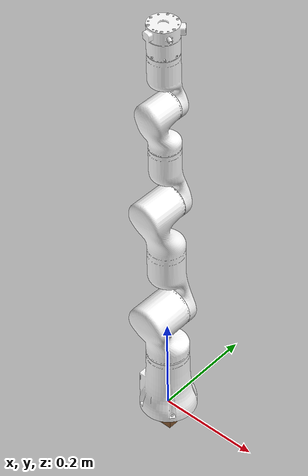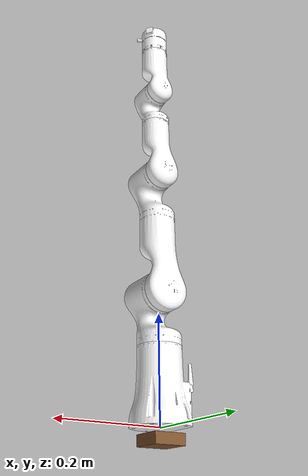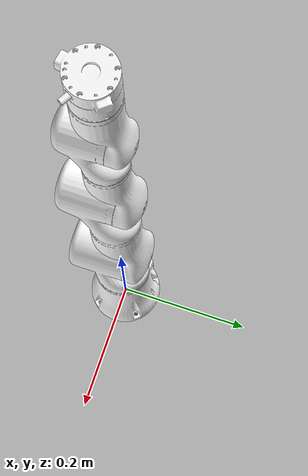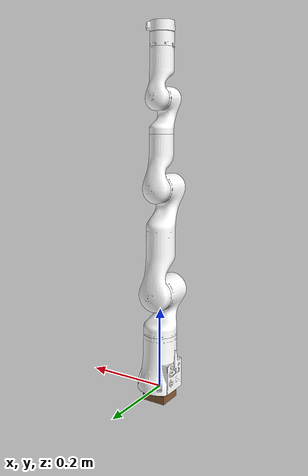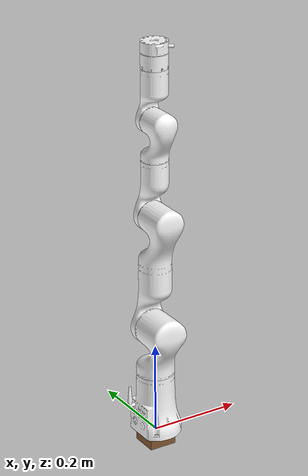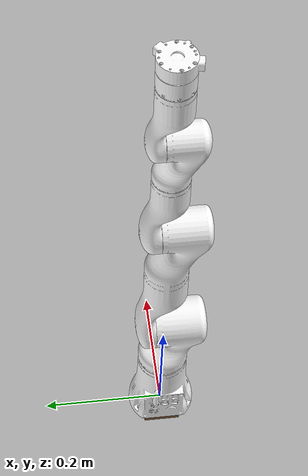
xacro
<?xml version="1.0" encoding="utf-8"?>
     <robot  name="rm_65_6f_description" xmlns:xacro="http://www.ros.org/wiki/xacro">
      <xacro:include filename="$(find rm_description)/urdf/RM65/rm_65.transmission.xacro"/>
      <xacro:include filename="$(find rm_description)/urdf/RM65/rm_65.gazebo.xacro"/>
        <!-- Inertial matrix -->
        <xacro:macro name="inertial_matrix" params="mass">
          <inertial>
            <mass value="${mass}" />
            <inertia ixx="1.0" ixy="0.0" ixz="0.0" iyy="0.5" iyz="0.0" izz="1.0" />
        </inertial>
        </xacro:macro>
        <xacro:macro name="Box_inertial_matrix" params="m l w h">
          <inertial>
            <mass value="${m}" />
              <inertia ixx="${m*(h*h + l*l)/12}" ixy = "0" ixz = "0"
                iyy="${m*(w*w + l*l)/12}" iyz= "0"
                izz="${m*(w*w + h*h)/12}" />
          </inertial>
        </xacro:macro>
        <link name="dummy">
        </link>
        <joint name="dummy_joint" type="fixed">
        <origin xyz="0 0 0" rpy="0 0 3.14" />
          <parent link="dummy" />
          <child link="base_link" />
        </joint>

        <!-- ///////////////////////////////////////   bottom_joint   ////////////////////////////////////////// -->
        <joint name="bottom_joint" type="fixed">
          <origin xyz="0 0 0" rpy="0 0 0" />
          <parent link="base_link"/>
          <child link="bottom_link"/>
        </joint>
        <link name="bottom_link">
          <visual>
            <origin xyz=" 0 0 -0.02"  rpy="0 0 0"/>
            <geometry>
              <box size="0.06 0.06 0.02" />
            </geometry>
            <material name="Brown" />
          </visual>
          <collision>
            <origin xyz=" 0 0 0"  rpy="0 0 0"/>
            <geometry>
              <box size="0.06 0.06 0.02" />
            </geometry>
          </collision>
          <xacro:Box_inertial_matrix m="500" l="1" w="1" h="0.02"/>
        </link>

  <link
    name="base_link">
    <inertial>
      <origin
        xyz="-0.00043295 -3.5277E-05 0.059942"
        rpy="0 0 0" />
      <mass
        value="0.84105" />
      <inertia
        ixx="0.0017261"
        ixy="2.5273E-06"
        ixz="-3.6769E-05"
        iyy="0.0017099"
        iyz="1.6802E-06"
        izz="0.00090402" />
    </inertial>
    <visual>
      <origin
        xyz="0 0 0"
        rpy="0 0 0" />
      <geometry>
        <mesh
          filename="package://rm_description/meshes/RM65_6F/base_link.STL" />
      </geometry>
      <material
        name="">
        <color
          rgba="1 1 1 1" />
      </material>
    </visual>
    <collision>
      <origin
        xyz="0 0 0"
        rpy="0 0 0" />
      <geometry>
        <mesh
          filename="package://rm_description/meshes/RM65_6F/base_link.STL" />
      </geometry>
    </collision>
  </link>
  <link
    name="Link1">
    <inertial>
      <origin
        xyz="2.1376E-07 0.021108 -0.025186"
        rpy="0 0 0" />
      <mass
        value="0.59356" />
      <inertia
        ixx="0.0012661"
        ixy="-1.2951E-08"
        ixz="-9.8019E-09"
        iyy="0.0011817"
        iyz="-0.00021122"
        izz="0.00056135" />
    </inertial>
    <visual>
      <origin
        xyz="0 0 0"
        rpy="0 0 0" />
      <geometry>
        <mesh
          filename="package://rm_description/meshes/RM65_6F/Link1.STL" />
      </geometry>
      <material
        name="">
        <color
          rgba="1 1 1 1" />
      </material>
    </visual>
    <collision>
      <origin
        xyz="0 0 0"
        rpy="0 0 0" />
      <geometry>
        <mesh
          filename="package://rm_description/meshes/RM65_6F/Link1.STL" />
      </geometry>
    </collision>
  </link>
  <joint
    name="joint1"
    type="revolute">
    <origin
      xyz="0 0 0.2405"
      rpy="0 0 0" />
    <parent
      link="base_link" />
    <child
      link="Link1" />
    <axis
      xyz="0 0 1" />
    <limit
      lower="-3.107"
      upper="3.107"
      effort="100"
      velocity="1" />
  </joint>
  <link
    name="Link2">
    <inertial>
      <origin
        xyz="0.15226 6.0139E-07 -0.0062025"
        rpy="0 0 0" />
      <mass
        value="0.86418" />
      <inertia
        ixx="0.00063254"
        ixy="-5.979E-09"
        ixz="0.00042163"
        iyy="0.0020527"
        iyz="1.8401E-09"
        izz="0.0019528" />
    </inertial>
    <visual>
      <origin
        xyz="0 0 0"
        rpy="0 0 0" />
      <geometry>
        <mesh
          filename="package://rm_description/meshes/RM65_6F/Link2.STL" />
      </geometry>
      <material
        name="">
        <color
          rgba="1 1 1 1" />
      </material>
    </visual>
    <collision>
      <origin
        xyz="0 0 0"
        rpy="0 0 0" />
      <geometry>
        <mesh
          filename="package://rm_description/meshes/RM65_6F/Link2.STL" />
      </geometry>
    </collision>
  </link>
  <joint
    name="joint2"
    type="revolute">
    <origin
      xyz="0 0 0"
      rpy="1.5708 -1.5708 0" />
    <parent
      link="Link1" />
    <child
      link="Link2" />
    <axis
      xyz="0 0 1" />
    <limit
      lower="-2.269"
      upper="2.269"
      effort="100"
      velocity="1" />
  </joint>
  <link
    name="Link3">
    <inertial>
      <origin
        xyz="5.0421E-06 -0.059593 0.010569"
        rpy="0 0 0" />
      <mass
        value="0.28963" />
      <inertia
        ixx="0.00063737"
        ixy="-7.0522E-08"
        ixz="-3.8666E-08"
        iyy="0.00015648"
        iyz="-0.00014461"
        izz="0.00061418" />
    </inertial>
    <visual>
      <origin
        xyz="0 0 0"
        rpy="0 0 0" />
      <geometry>
        <mesh
          filename="package://rm_description/meshes/RM65_6F/Link3.STL" />
      </geometry>
      <material
        name="">
        <color
          rgba="1 1 1 1" />
      </material>
    </visual>
    <collision>
      <origin
        xyz="0 0 0"
        rpy="0 0 0" />
      <geometry>
        <mesh
          filename="package://rm_description/meshes/RM65_6F/Link3.STL" />
      </geometry>
    </collision>
  </link>
  <joint
    name="joint3"
    type="revolute">
    <origin
      xyz="0.256 0 0"
      rpy="0 0 1.5708" />
    <parent
      link="Link2" />
    <child
      link="Link3" />
    <axis
      xyz="0 0 1" />
    <limit
      lower="-2.356"
      upper="2.356"
      effort="100"
      velocity="1" />
  </joint>
  <link
    name="Link4">
    <inertial>
      <origin
        xyz="1.1466E-06 -0.018041 -0.021541"
        rpy="0 0 0" />
      <mass
        value="0.23941" />
      <inertia
        ixx="0.00028594"
        ixy="2.6611E-09"
        ixz="-1.8435E-09"
        iyy="0.00026273"
        iyz="4.4238E-05"
        izz="0.00011989" />
    </inertial>
    <visual>
      <origin
        xyz="0 0 0"
        rpy="0 0 0" />
      <geometry>
        <mesh
          filename="package://rm_description/meshes/RM65_6F/Link4.STL" />
      </geometry>
      <material
        name="">
        <color
          rgba="1 1 1 1" />
      </material>
    </visual>
    <collision>
      <origin
        xyz="0 0 0"
        rpy="0 0 0" />
      <geometry>
        <mesh
          filename="package://rm_description/meshes/RM65_6F/Link4.STL" />
      </geometry>
    </collision>
  </link>
  <joint
    name="joint4"
    type="revolute">
    <origin
      xyz="0 -0.21 0"
      rpy="1.5708 0 0" />
    <parent
      link="Link3" />
    <child
      link="Link4" />
    <axis
      xyz="0 0 1" />
    <limit
      lower="-3.107"
      upper="3.107"
      effort="100"
      velocity="1" />
  </joint>
  <link
    name="Link5">
    <inertial>
      <origin
        xyz="3.4542E-06 -0.059382 0.0073678"
        rpy="0 0 0" />
      <mass
        value="0.21879" />
      <inertia
        ixx="0.00035053"
        ixy="-3.1667E-08"
        ixz="-1.7442E-08"
        iyy="0.00010492"
        iyz="-7.824E-05"
        izz="0.00033447" />
    </inertial>
    <visual>
      <origin
        xyz="0 0 0"
        rpy="0 0 0" />
      <geometry>
        <mesh
          filename="package://rm_description/meshes/RM65_6F/Link5.STL" />
      </geometry>
      <material
        name="">
        <color
          rgba="1 1 1 1" />
      </material>
    </visual>
    <collision>
      <origin
        xyz="0 0 0"
        rpy="0 0 0" />
      <geometry>
        <mesh
          filename="package://rm_description/meshes/RM65_6F/Link5.STL" />
      </geometry>
    </collision>
  </link>
  <joint
    name="joint5"
    type="revolute">
    <origin
      xyz="0 0 0"
      rpy="-1.5708 0 0" />
    <parent
      link="Link4" />
    <child
      link="Link5" />
    <axis
      xyz="0 0 1" />
    <limit
      lower="-2.234"
      upper="2.234"
      effort="100"
      velocity="1" />
  </joint>
  <link
    name="Link6">
    <inertial>
      <origin
        xyz="0.00032231 -0.00017819 -0.028676"
        rpy="0 0 0" />
      <mass
        value="0.14433" />
      <inertia
        ixx="3.6119E-05"
        ixy="-1.3242E-06"
        ixz="-3.2733E-08"
        iyy="3.4626E-05"
        iyz="7.6661E-09"
        izz="6.1463E-05" />
    </inertial>
    <visual>
      <origin
        xyz="0 0 0"
        rpy="0 0 0" />
      <geometry>
        <mesh
          filename="package://rm_description/meshes/RM65_6F/Link6.STL" />
      </geometry>
      <material
        name="">
        <color
          rgba="1 1 1 1" />
      </material>
    </visual>
    <collision>
      <origin
        xyz="0 0 0"
        rpy="0 0 0" />
      <geometry>
        <mesh
          filename="package://rm_description/meshes/RM65_6F/Link6.STL" />
      </geometry>
    </collision>
  </link>
  <joint
    name="joint6"
    type="revolute">
    <origin
      xyz="0 -0.1725 0"
      rpy="1.5708 0 0" />
    <parent
      link="Link5" />
    <child
      link="Link6" />
    <axis
      xyz="0 0 1" />
    <limit
      lower="-6.283"
      upper="6.283"
      effort="100"
      velocity="1" />
  </joint>

    <!-- Transmissions for ROS Control -->
    <xacro:macro name="transmission_block" params="joint_name">
      <transmission name="tran1">
        <type>transmission_interface/SimpleTransmission</type>
        <joint name="${joint_name}">
          <hardwareInterface>hardware_interface/PositionJointInterface</hardwareInterface>
        </joint>
        <actuator name="motor1">
          <hardwareInterface>hardware_interface/PositionJointInterface</hardwareInterface>
          <mechanicalReduction>1</mechanicalReduction>
        </actuator>
      </transmission>
    </xacro:macro>

    <xacro:transmission_block joint_name="joint1"/>
    <xacro:transmission_block joint_name="joint2"/>
    <xacro:transmission_block joint_name="joint3"/>
    <xacro:transmission_block joint_name="joint4"/>
    <xacro:transmission_block joint_name="joint5"/>
    <xacro:transmission_block joint_name="joint6"/>

    <!-- ros_control plugin -->
    <gazebo>
      <plugin name="gazebo_ros_control" filename="libgazebo_ros_control.so">
        <robotNamespace>/arm</robotNamespace>
        <robotSimType>gazebo_ros_control/DefaultRobotHWSim</robotSimType>
        <legacyModeNS>true</legacyModeNS>
      </plugin>
    </gazebo>
  </robot>
